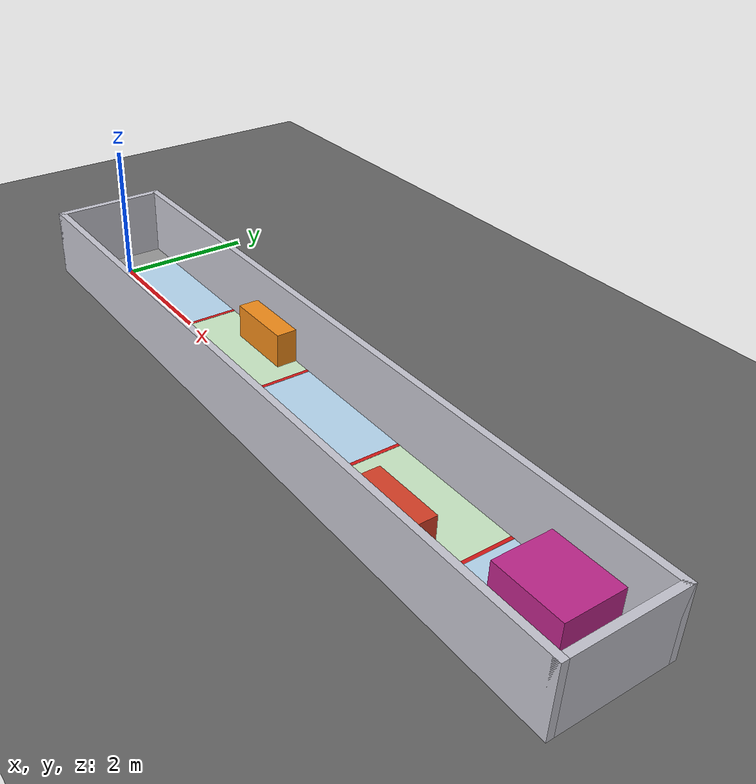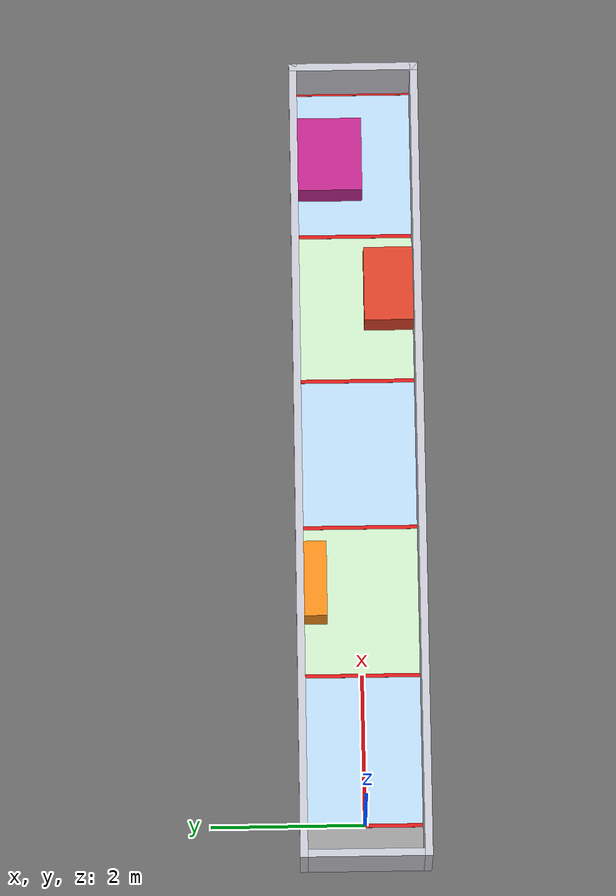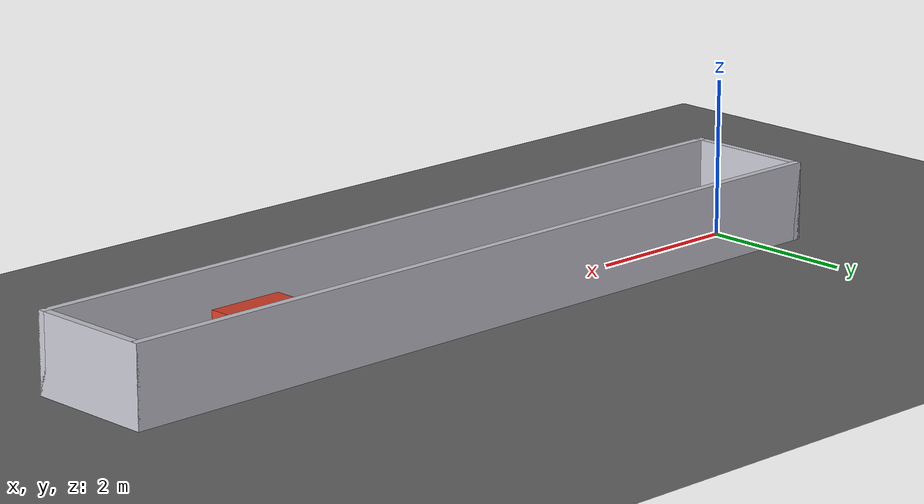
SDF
<?xml version="1.0" ?>
<sdf version="1.6">
  <world name="urbanlens_corridor">
    <scene><ambient>0.55 0.55 0.55 1</ambient><background>0.75 0.82 0.9 1</background><shadows>true</shadows></scene>
    <light name="sun" type="directional">
      <cast_shadows>true</cast_shadows>
      <pose>0 0 10 0 0 0</pose>
      <diffuse>0.85 0.85 0.85 1</diffuse>
      <specular>0.2 0.2 0.2 1</specular>
      <attenuation><range>1000</range><constant>0.9</constant><linear>0.01</linear><quadratic>0.001</quadratic></attenuation>
      <direction>-0.4 0.2 -0.9</direction>
    </light>
    <model name="ground_plane">
      <static>true</static>
      <link name="link">
        <collision name="collision">
          <geometry><plane><normal>0 0 1</normal><size>60 60</size></plane></geometry>
          <surface><friction><ode><mu>100</mu><mu2>50</mu2></ode></friction></surface>
        </collision>
        <visual name="visual">
          <cast_shadows>false</cast_shadows>
          <geometry><plane><normal>0 0 1</normal><size>60 60</size></plane></geometry>
          <material><ambient>0.4 0.4 0.4 1</ambient><diffuse>0.4 0.4 0.4 1</diffuse></material>
        </visual>
      </link>
    </model>

    <model name="wall_left">
      <static>true</static>
      <pose>4.7500 0.8000 0.5000 0 0 0</pose>
      <link name="link">
      <collision name="collision"><geometry><box><size>10.7 0.1 1.0</size></box></geometry></collision>
        <visual name="visual">
          <geometry><box><size>10.7 0.1 1.0</size></box></geometry>
          <material><ambient>0.78 0.78 0.82 1</ambient><diffuse>0.78 0.78 0.82 1</diffuse></material>
        </visual>
      </link>
    </model>
    <model name="wall_right">
      <static>true</static>
      <pose>4.7500 -0.8000 0.5000 0 0 0</pose>
      <link name="link">
      <collision name="collision"><geometry><box><size>10.7 0.1 1.0</size></box></geometry></collision>
        <visual name="visual">
          <geometry><box><size>10.7 0.1 1.0</size></box></geometry>
          <material><ambient>0.78 0.78 0.82 1</ambient><diffuse>0.78 0.78 0.82 1</diffuse></material>
        </visual>
      </link>
    </model>
    <model name="wall_back">
      <static>true</static>
      <pose>-0.5500 0.0000 0.5000 0 0 0</pose>
      <link name="link">
      <collision name="collision"><geometry><box><size>0.1 1.7 1.0</size></box></geometry></collision>
        <visual name="visual">
          <geometry><box><size>0.1 1.7 1.0</size></box></geometry>
          <material><ambient>0.78 0.78 0.82 1</ambient><diffuse>0.78 0.78 0.82 1</diffuse></material>
        </visual>
      </link>
    </model>
    <model name="wall_end">
      <static>true</static>
      <pose>10.0500 0.0000 0.5000 0 0 0</pose>
      <link name="link">
      <collision name="collision"><geometry><box><size>0.1 1.7 1.0</size></box></geometry></collision>
        <visual name="visual">
          <geometry><box><size>0.1 1.7 1.0</size></box></geometry>
          <material><ambient>0.78 0.78 0.82 1</ambient><diffuse>0.78 0.78 0.82 1</diffuse></material>
        </visual>
      </link>
    </model>
    <model name="floor_start_pad">
      <static>true</static>
      <pose>-0.2500 0.0000 0.0020 0 0 0</pose>
      <link name="link">
        <visual name="visual">
          <geometry><box><size>0.5 1.5 0.004</size></box></geometry>
          <material><ambient>0.6 0.6 0.6 1</ambient><diffuse>0.6 0.6 0.6 1</diffuse></material>
        </visual>
      </link>
    </model>
    <model name="floor_S1">
      <static>true</static>
      <pose>1.0000 0.0000 0.0020 0 0 0</pose>
      <link name="link">
        <visual name="visual">
          <geometry><box><size>2.0 1.5 0.004</size></box></geometry>
          <material><ambient>0.72 0.85 0.95 1</ambient><diffuse>0.72 0.85 0.95 1</diffuse></material>
        </visual>
      </link>
    </model>
    <model name="floor_S2">
      <static>true</static>
      <pose>3.0000 0.0000 0.0020 0 0 0</pose>
      <link name="link">
        <visual name="visual">
          <geometry><box><size>2.0 1.5 0.004</size></box></geometry>
          <material><ambient>0.8 0.92 0.78 1</ambient><diffuse>0.8 0.92 0.78 1</diffuse></material>
        </visual>
      </link>
    </model>
    <model name="floor_S3">
      <static>true</static>
      <pose>5.0000 0.0000 0.0020 0 0 0</pose>
      <link name="link">
        <visual name="visual">
          <geometry><box><size>2.0 1.5 0.004</size></box></geometry>
          <material><ambient>0.72 0.85 0.95 1</ambient><diffuse>0.72 0.85 0.95 1</diffuse></material>
        </visual>
      </link>
    </model>
    <model name="floor_S4">
      <static>true</static>
      <pose>7.0000 0.0000 0.0020 0 0 0</pose>
      <link name="link">
        <visual name="visual">
          <geometry><box><size>2.0 1.5 0.004</size></box></geometry>
          <material><ambient>0.8 0.92 0.78 1</ambient><diffuse>0.8 0.92 0.78 1</diffuse></material>
        </visual>
      </link>
    </model>
    <model name="floor_S5">
      <static>true</static>
      <pose>9.0000 0.0000 0.0020 0 0 0</pose>
      <link name="link">
        <visual name="visual">
          <geometry><box><size>2.0 1.5 0.004</size></box></geometry>
          <material><ambient>0.72 0.85 0.95 1</ambient><diffuse>0.72 0.85 0.95 1</diffuse></material>
        </visual>
      </link>
    </model>
    <model name="line_0">
      <static>true</static>
      <pose>0.0000 0.0000 0.0040 0 0 0</pose>
      <link name="link">
        <visual name="visual">
          <geometry><box><size>0.05 1.5 0.006</size></box></geometry>
          <material><ambient>0.85 0.1 0.1 1</ambient><diffuse>0.85 0.1 0.1 1</diffuse></material>
        </visual>
      </link>
    </model>
    <model name="line_1">
      <static>true</static>
      <pose>2.0000 0.0000 0.0040 0 0 0</pose>
      <link name="link">
        <visual name="visual">
          <geometry><box><size>0.05 1.5 0.006</size></box></geometry>
          <material><ambient>0.85 0.1 0.1 1</ambient><diffuse>0.85 0.1 0.1 1</diffuse></material>
        </visual>
      </link>
    </model>
    <model name="line_2">
      <static>true</static>
      <pose>4.0000 0.0000 0.0040 0 0 0</pose>
      <link name="link">
        <visual name="visual">
          <geometry><box><size>0.05 1.5 0.006</size></box></geometry>
          <material><ambient>0.85 0.1 0.1 1</ambient><diffuse>0.85 0.1 0.1 1</diffuse></material>
        </visual>
      </link>
    </model>
    <model name="line_3">
      <static>true</static>
      <pose>6.0000 0.0000 0.0040 0 0 0</pose>
      <link name="link">
        <visual name="visual">
          <geometry><box><size>0.05 1.5 0.006</size></box></geometry>
          <material><ambient>0.85 0.1 0.1 1</ambient><diffuse>0.85 0.1 0.1 1</diffuse></material>
        </visual>
      </link>
    </model>
    <model name="line_4">
      <static>true</static>
      <pose>8.0000 0.0000 0.0040 0 0 0</pose>
      <link name="link">
        <visual name="visual">
          <geometry><box><size>0.05 1.5 0.006</size></box></geometry>
          <material><ambient>0.85 0.1 0.1 1</ambient><diffuse>0.85 0.1 0.1 1</diffuse></material>
        </visual>
      </link>
    </model>
    <model name="line_5">
      <static>true</static>
      <pose>10.0000 0.0000 0.0040 0 0 0</pose>
      <link name="link">
        <visual name="visual">
          <geometry><box><size>0.05 1.5 0.006</size></box></geometry>
          <material><ambient>0.85 0.1 0.1 1</ambient><diffuse>0.85 0.1 0.1 1</diffuse></material>
        </visual>
      </link>
    </model>
    <model name="box_S2">
      <static>true</static>
      <pose>3.2000 0.6000 0.2500 0 0 0</pose>
      <link name="link">
      <collision name="collision"><geometry><box><size>1.0 0.3 0.5</size></box></geometry></collision>
        <visual name="visual">
          <geometry><box><size>1.0 0.3 0.5</size></box></geometry>
          <material><ambient>0.95 0.55 0.1 1</ambient><diffuse>0.95 0.55 0.1 1</diffuse></material>
        </visual>
      </link>
    </model>
    <model name="box_S4">
      <static>true</static>
      <pose>7.2000 -0.4250 0.2500 0 0 0</pose>
      <link name="link">
      <collision name="collision"><geometry><box><size>1.0 0.65 0.5</size></box></geometry></collision>
        <visual name="visual">
          <geometry><box><size>1.0 0.65 0.5</size></box></geometry>
          <material><ambient>0.85 0.25 0.15 1</ambient><diffuse>0.85 0.25 0.15 1</diffuse></material>
        </visual>
      </link>
    </model>
    <model name="box_S5">
      <static>true</static>
      <pose>9.0000 0.3250 0.2500 0 0 0</pose>
      <link name="link">
      <collision name="collision"><geometry><box><size>1.0 0.85 0.5</size></box></geometry></collision>
        <visual name="visual">
          <geometry><box><size>1.0 0.85 0.5</size></box></geometry>
          <material><ambient>0.75 0.15 0.55 1</ambient><diffuse>0.75 0.15 0.55 1</diffuse></material>
        </visual>
      </link>
    </model>
  </world>
</sdf>
